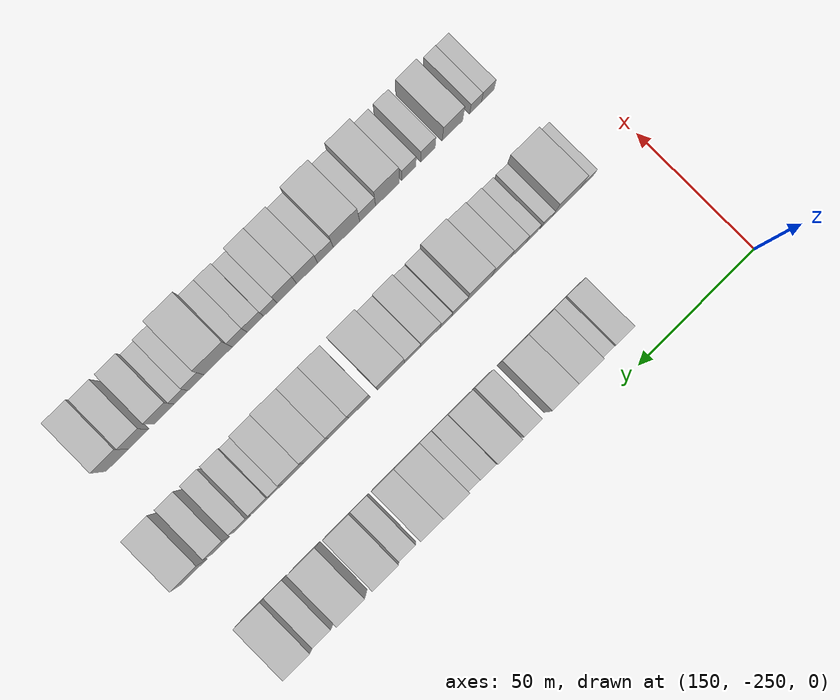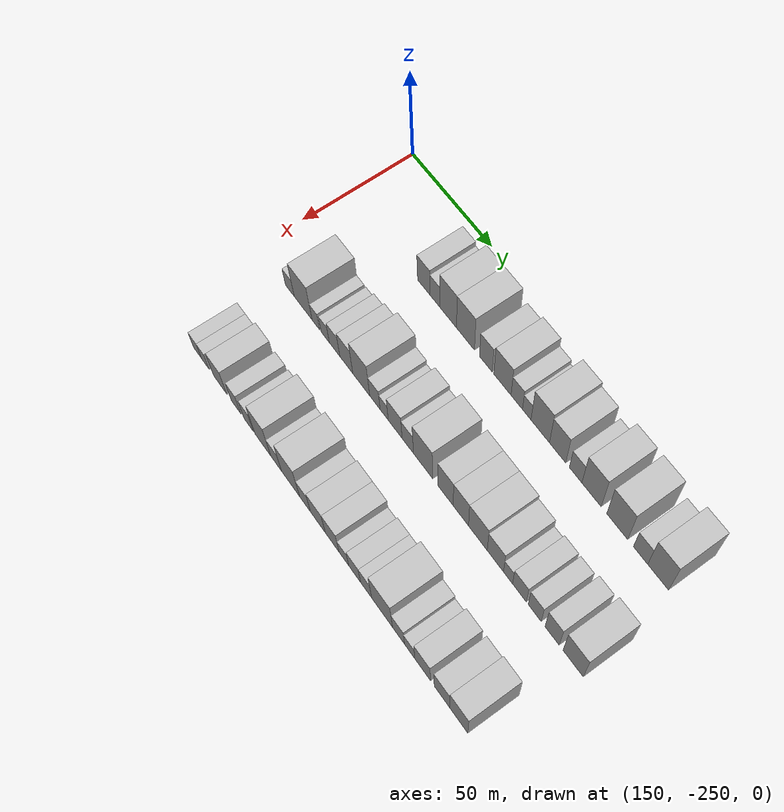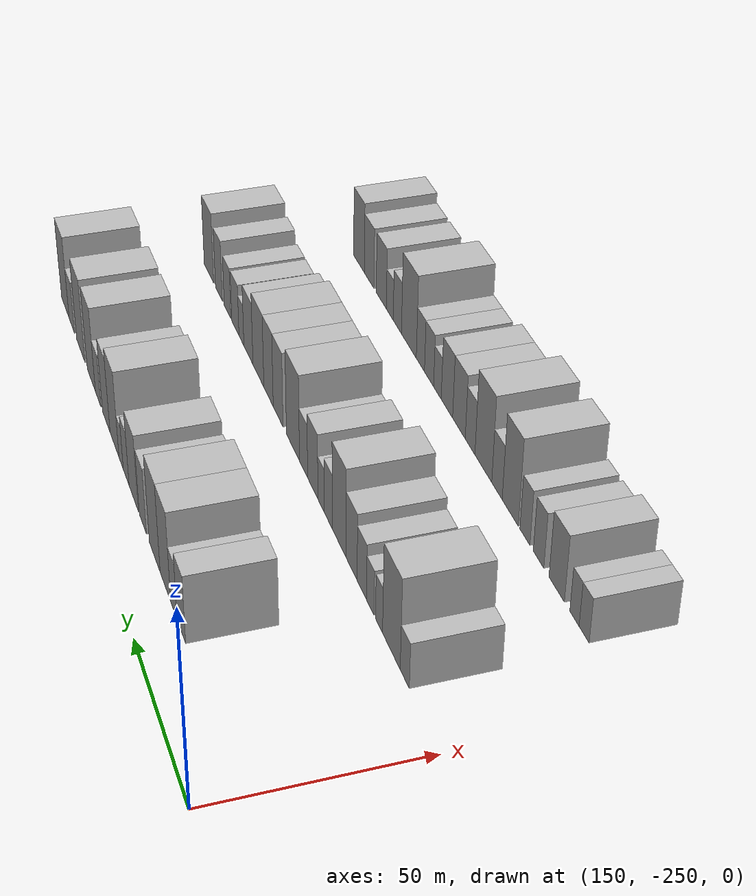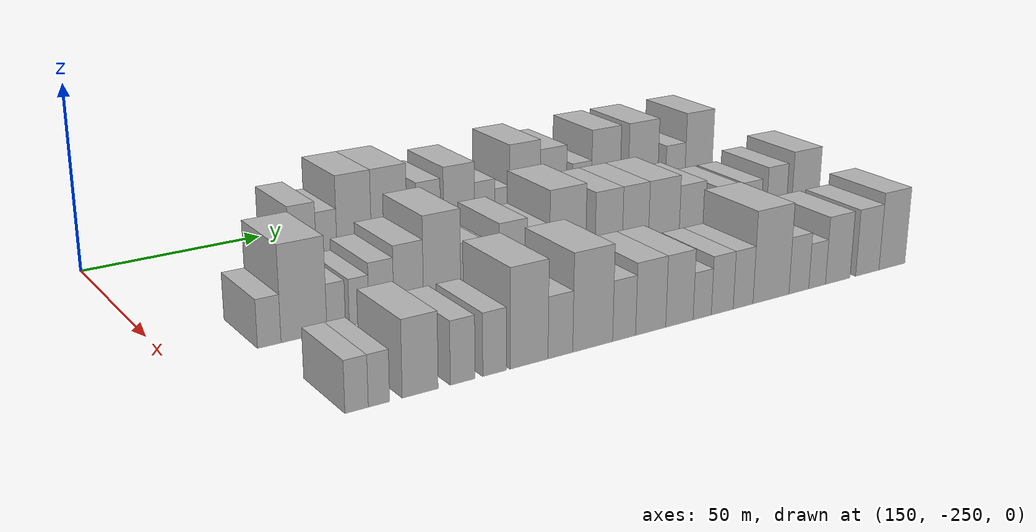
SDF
<sdf version="1.6">
 <world name="default">
  <model name="building_459">
   <static>1</static>
   <pose>170.0000 -200.6749 0 0.000000 0.000000 0.000000</pose>
   <link name="link">
    <pose>0 0 9.00 0 0 0</pose>
    <collision name="collision"><geometry><box><size>20.0000 7.7728 18.0000</size></box></geometry></collision>
    <visual name="visual">
     <cast_shadows>0</cast_shadows>
     <geometry><box><size>20.0000 7.7728 18.0000</size></box></geometry>
     <material>
      <script>
       <uri>model://HANNAS_wall/materials/scripts</uri>
       <uri>model://HANNAS_wall/materials/textures</uri>
       <name>vrc/HANNAS_wall</name>
      </script>
     </material>
    </visual>
   </link>
  </model>
  <model name="building_460">
   <static>1</static>
   <pose>170.0000 -193.7880 0 0.000000 0.000000 0.000000</pose>
   <link name="link">
    <pose>0 0 7.50 0 0 0</pose>
    <collision name="collision"><geometry><box><size>20.0000 6.0010 15.0000</size></box></geometry></collision>
    <visual name="visual">
     <cast_shadows>0</cast_shadows>
     <geometry><box><size>20.0000 6.0010 15.0000</size></box></geometry>
     <material>
      <script>
       <uri>model://HANNAS_wall/materials/scripts</uri>
       <uri>model://HANNAS_wall/materials/textures</uri>
       <name>vrc/HANNAS_wall</name>
      </script>
     </material>
    </visual>
   </link>
  </model>
  <model name="building_461">
   <static>1</static>
   <pose>170.0000 -185.6848 0 0.000000 0.000000 0.000000</pose>
   <link name="link">
    <pose>0 0 12.00 0 0 0</pose>
    <collision name="collision"><geometry><box><size>20.0000 10.2054 24.0000</size></box></geometry></collision>
    <visual name="visual">
     <cast_shadows>0</cast_shadows>
     <geometry><box><size>20.0000 10.2054 24.0000</size></box></geometry>
     <material>
      <script>
       <uri>model://HANNAS_wall/materials/scripts</uri>
       <uri>model://HANNAS_wall/materials/textures</uri>
       <name>vrc/HANNAS_wall</name>
      </script>
     </material>
    </visual>
   </link>
  </model>
  <model name="building_462">
   <static>1</static>
   <pose>170.0000 -175.1895 0 0.000000 0.000000 0.000000</pose>
   <link name="link">
    <pose>0 0 12.00 0 0 0</pose>
    <collision name="collision"><geometry><box><size>20.0000 10.7854 24.0000</size></box></geometry></collision>
    <visual name="visual">
     <cast_shadows>0</cast_shadows>
     <geometry><box><size>20.0000 10.7854 24.0000</size></box></geometry>
     <material>
      <script>
       <uri>model://HANNAS_wall/materials/scripts</uri>
       <uri>model://HANNAS_wall/materials/textures</uri>
       <name>vrc/HANNAS_wall</name>
      </script>
     </material>
    </visual>
   </link>
  </model>
  <model name="building_463">
   <static>1</static>
   <pose>170.0000 -163.0595 0 0.000000 0.000000 0.000000</pose>
   <link name="link">
    <pose>0 0 9.00 0 0 0</pose>
    <collision name="collision"><geometry><box><size>20.0000 7.4746 18.0000</size></box></geometry></collision>
    <visual name="visual">
     <cast_shadows>0</cast_shadows>
     <geometry><box><size>20.0000 7.4746 18.0000</size></box></geometry>
     <material>
      <script>
       <uri>model://HANNAS_wall/materials/scripts</uri>
       <uri>model://HANNAS_wall/materials/textures</uri>
       <name>vrc/HANNAS_wall</name>
      </script>
     </material>
    </visual>
   </link>
  </model>
  <model name="building_464">
   <static>1</static>
   <pose>170.0000 -153.3222 0 0.000000 0.000000 0.000000</pose>
   <link name="link">
    <pose>0 0 10.50 0 0 0</pose>
    <collision name="collision"><geometry><box><size>20.0000 10.0000 21.0000</size></box></geometry></collision>
    <visual name="visual">
     <cast_shadows>0</cast_shadows>
     <geometry><box><size>20.0000 10.0000 21.0000</size></box></geometry>
     <material>
      <script>
       <uri>model://HANNAS_wall/materials/scripts</uri>
       <uri>model://HANNAS_wall/materials/textures</uri>
       <name>vrc/HANNAS_wall</name>
      </script>
     </material>
    </visual>
   </link>
  </model>
  <model name="building_465">
   <static>1</static>
   <pose>170.0000 -145.0394 0 0.000000 0.000000 0.000000</pose>
   <link name="link">
    <pose>0 0 7.50 0 0 0</pose>
    <collision name="collision"><geometry><box><size>20.0000 6.5656 15.0000</size></box></geometry></collision>
    <visual name="visual">
     <cast_shadows>0</cast_shadows>
     <geometry><box><size>20.0000 6.5656 15.0000</size></box></geometry>
     <material>
      <script>
       <uri>model://HANNAS_wall/materials/scripts</uri>
       <uri>model://HANNAS_wall/materials/textures</uri>
       <name>vrc/HANNAS_wall</name>
      </script>
     </material>
    </visual>
   </link>
  </model>
  <model name="building_466">
   <static>1</static>
   <pose>170.0000 -139.3261 0 0.000000 0.000000 0.000000</pose>
   <link name="link">
    <pose>0 0 6.00 0 0 0</pose>
    <collision name="collision"><geometry><box><size>20.0000 4.8610 12.0000</size></box></geometry></collision>
    <visual name="visual">
     <cast_shadows>0</cast_shadows>
     <geometry><box><size>20.0000 4.8610 12.0000</size></box></geometry>
     <material>
      <script>
       <uri>model://HANNAS_wall/materials/scripts</uri>
       <uri>model://HANNAS_wall/materials/textures</uri>
       <name>vrc/HANNAS_wall</name>
      </script>
     </material>
    </visual>
   </link>
  </model>
  <model name="building_467">
   <static>1</static>
   <pose>170.0000 -131.6792 0 0.000000 0.000000 0.000000</pose>
   <link name="link">
    <pose>0 0 12.00 0 0 0</pose>
    <collision name="collision"><geometry><box><size>20.0000 10.4327 24.0000</size></box></geometry></collision>
    <visual name="visual">
     <cast_shadows>0</cast_shadows>
     <geometry><box><size>20.0000 10.4327 24.0000</size></box></geometry>
     <material>
      <script>
       <uri>model://HANNAS_wall/materials/scripts</uri>
       <uri>model://HANNAS_wall/materials/textures</uri>
       <name>vrc/HANNAS_wall</name>
      </script>
     </material>
    </visual>
   </link>
  </model>
  <model name="building_468">
   <static>1</static>
   <pose>170.0000 -121.9236 0 0.000000 0.000000 0.000000</pose>
   <link name="link">
    <pose>0 0 10.50 0 0 0</pose>
    <collision name="collision"><geometry><box><size>20.0000 9.0785 21.0000</size></box></geometry></collision>
    <visual name="visual">
     <cast_shadows>0</cast_shadows>
     <geometry><box><size>20.0000 9.0785 21.0000</size></box></geometry>
     <material>
      <script>
       <uri>model://HANNAS_wall/materials/scripts</uri>
       <uri>model://HANNAS_wall/materials/textures</uri>
       <name>vrc/HANNAS_wall</name>
      </script>
     </material>
    </visual>
   </link>
  </model>
  <model name="building_469">
   <static>1</static>
   <pose>170.0000 -111.9603 0 0.000000 0.000000 0.000000</pose>
   <link name="link">
    <pose>0 0 7.50 0 0 0</pose>
    <collision name="collision"><geometry><box><size>20.0000 6.8480 15.0000</size></box></geometry></collision>
    <visual name="visual">
     <cast_shadows>0</cast_shadows>
     <geometry><box><size>20.0000 6.8480 15.0000</size></box></geometry>
     <material>
      <script>
       <uri>model://HANNAS_wall/materials/scripts</uri>
       <uri>model://HANNAS_wall/materials/textures</uri>
       <name>vrc/HANNAS_wall</name>
      </script>
     </material>
    </visual>
   </link>
  </model>
  <model name="building_470">
   <static>1</static>
   <pose>170.0000 -103.3231 0 0.000000 0.000000 0.000000</pose>
   <link name="link">
    <pose>0 0 12.00 0 0 0</pose>
    <collision name="collision"><geometry><box><size>20.0000 10.4263 24.0000</size></box></geometry></collision>
    <visual name="visual">
     <cast_shadows>0</cast_shadows>
     <geometry><box><size>20.0000 10.4263 24.0000</size></box></geometry>
     <material>
      <script>
       <uri>model://HANNAS_wall/materials/scripts</uri>
       <uri>model://HANNAS_wall/materials/textures</uri>
       <name>vrc/HANNAS_wall</name>
      </script>
     </material>
    </visual>
   </link>
  </model>
  <model name="building_471">
   <static>1</static>
   <pose>170.0000 -89.5599 0 0.000000 0.000000 0.000000</pose>
   <link name="link">
    <pose>0 0 12.00 0 0 0</pose>
    <collision name="collision"><geometry><box><size>20.0000 11.1001 24.0000</size></box></geometry></collision>
    <visual name="visual">
     <cast_shadows>0</cast_shadows>
     <geometry><box><size>20.0000 11.1001 24.0000</size></box></geometry>
     <material>
      <script>
       <uri>model://HANNAS_wall/materials/scripts</uri>
       <uri>model://HANNAS_wall/materials/textures</uri>
       <name>vrc/HANNAS_wall</name>
      </script>
     </material>
    </visual>
   </link>
  </model>
  <model name="building_472">
   <static>1</static>
   <pose>170.0000 -77.2872 0 0.000000 0.000000 0.000000</pose>
   <link name="link">
    <pose>0 0 7.50 0 0 0</pose>
    <collision name="collision"><geometry><box><size>20.0000 7.4454 15.0000</size></box></geometry></collision>
    <visual name="visual">
     <cast_shadows>0</cast_shadows>
     <geometry><box><size>20.0000 7.4454 15.0000</size></box></geometry>
     <material>
      <script>
       <uri>model://HANNAS_wall/materials/scripts</uri>
       <uri>model://HANNAS_wall/materials/textures</uri>
       <name>vrc/HANNAS_wall</name>
      </script>
     </material>
    </visual>
   </link>
  </model>
  <model name="building_473">
   <static>1</static>
   <pose>170.0000 -68.2282 0 0.000000 0.000000 0.000000</pose>
   <link name="link">
    <pose>0 0 12.00 0 0 0</pose>
    <collision name="collision"><geometry><box><size>20.0000 10.6726 24.0000</size></box></geometry></collision>
    <visual name="visual">
     <cast_shadows>0</cast_shadows>
     <geometry><box><size>20.0000 10.6726 24.0000</size></box></geometry>
     <material>
      <script>
       <uri>model://HANNAS_wall/materials/scripts</uri>
       <uri>model://HANNAS_wall/materials/textures</uri>
       <name>vrc/HANNAS_wall</name>
      </script>
     </material>
    </visual>
   </link>
  </model>
  <model name="building_586">
   <static>1</static>
   <pose>210.0000 -227.8085 0 0.000000 0.000000 0.000000</pose>
   <link name="link">
    <pose>0 0 6.00 0 0 0</pose>
    <collision name="collision"><geometry><box><size>20.0000 5.8399 12.0000</size></box></geometry></collision>
    <visual name="visual">
     <cast_shadows>0</cast_shadows>
     <geometry><box><size>20.0000 5.8399 12.0000</size></box></geometry>
     <material>
      <script>
       <uri>model://HANNAS_wall/materials/scripts</uri>
       <uri>model://HANNAS_wall/materials/textures</uri>
       <name>vrc/HANNAS_wall</name>
      </script>
     </material>
    </visual>
   </link>
  </model>
  <model name="building_587">
   <static>1</static>
   <pose>210.0000 -219.0505 0 0.000000 0.000000 0.000000</pose>
   <link name="link">
    <pose>0 0 12.00 0 0 0</pose>
    <collision name="collision"><geometry><box><size>20.0000 11.6761 24.0000</size></box></geometry></collision>
    <visual name="visual">
     <cast_shadows>0</cast_shadows>
     <geometry><box><size>20.0000 11.6761 24.0000</size></box></geometry>
     <material>
      <script>
       <uri>model://HANNAS_wall/materials/scripts</uri>
       <uri>model://HANNAS_wall/materials/textures</uri>
       <name>vrc/HANNAS_wall</name>
      </script>
     </material>
    </visual>
   </link>
  </model>
  <model name="building_588">
   <static>1</static>
   <pose>210.0000 -210.7938 0 0.000000 0.000000 0.000000</pose>
   <link name="link">
    <pose>0 0 6.00 0 0 0</pose>
    <collision name="collision"><geometry><box><size>20.0000 4.8373 12.0000</size></box></geometry></collision>
    <visual name="visual">
     <cast_shadows>0</cast_shadows>
     <geometry><box><size>20.0000 4.8373 12.0000</size></box></geometry>
     <material>
      <script>
       <uri>model://HANNAS_wall/materials/scripts</uri>
       <uri>model://HANNAS_wall/materials/textures</uri>
       <name>vrc/HANNAS_wall</name>
      </script>
     </material>
    </visual>
   </link>
  </model>
  <model name="building_589">
   <static>1</static>
   <pose>210.0000 -204.7537 0 0.000000 0.000000 0.000000</pose>
   <link name="link">
    <pose>0 0 6.00 0 0 0</pose>
    <collision name="collision"><geometry><box><size>20.0000 5.2429 12.0000</size></box></geometry></collision>
    <visual name="visual">
     <cast_shadows>0</cast_shadows>
     <geometry><box><size>20.0000 5.2429 12.0000</size></box></geometry>
     <material>
      <script>
       <uri>model://HANNAS_wall/materials/scripts</uri>
       <uri>model://HANNAS_wall/materials/textures</uri>
       <name>vrc/HANNAS_wall</name>
      </script>
     </material>
    </visual>
   </link>
  </model>
  <model name="building_590">
   <static>1</static>
   <pose>210.0000 -198.7885 0 0.000000 0.000000 0.000000</pose>
   <link name="link">
    <pose>0 0 7.50 0 0 0</pose>
    <collision name="collision"><geometry><box><size>20.0000 6.6876 15.0000</size></box></geometry></collision>
    <visual name="visual">
     <cast_shadows>0</cast_shadows>
     <geometry><box><size>20.0000 6.6876 15.0000</size></box></geometry>
     <material>
      <script>
       <uri>model://HANNAS_wall/materials/scripts</uri>
       <uri>model://HANNAS_wall/materials/textures</uri>
       <name>vrc/HANNAS_wall</name>
      </script>
     </material>
    </visual>
   </link>
  </model>
  <model name="building_591">
   <static>1</static>
   <pose>210.0000 -191.3657 0 0.000000 0.000000 0.000000</pose>
   <link name="link">
    <pose>0 0 9.00 0 0 0</pose>
    <collision name="collision"><geometry><box><size>20.0000 8.1581 18.0000</size></box></geometry></collision>
    <visual name="visual">
     <cast_shadows>0</cast_shadows>
     <geometry><box><size>20.0000 8.1581 18.0000</size></box></geometry>
     <material>
      <script>
       <uri>model://HANNAS_wall/materials/scripts</uri>
       <uri>model://HANNAS_wall/materials/textures</uri>
       <name>vrc/HANNAS_wall</name>
      </script>
     </material>
    </visual>
   </link>
  </model>
  <model name="building_592">
   <static>1</static>
   <pose>210.0000 -182.0295 0 0.000000 0.000000 0.000000</pose>
   <link name="link">
    <pose>0 0 12.00 0 0 0</pose>
    <collision name="collision"><geometry><box><size>20.0000 10.5143 24.0000</size></box></geometry></collision>
    <visual name="visual">
     <cast_shadows>0</cast_shadows>
     <geometry><box><size>20.0000 10.5143 24.0000</size></box></geometry>
     <material>
      <script>
       <uri>model://HANNAS_wall/materials/scripts</uri>
       <uri>model://HANNAS_wall/materials/textures</uri>
       <name>vrc/HANNAS_wall</name>
      </script>
     </material>
    </visual>
   </link>
  </model>
  <model name="building_593">
   <static>1</static>
   <pose>210.0000 -173.6153 0 0.000000 0.000000 0.000000</pose>
   <link name="link">
    <pose>0 0 7.50 0 0 0</pose>
    <collision name="collision"><geometry><box><size>20.0000 6.3141 15.0000</size></box></geometry></collision>
    <visual name="visual">
     <cast_shadows>0</cast_shadows>
     <geometry><box><size>20.0000 6.3141 15.0000</size></box></geometry>
     <material>
      <script>
       <uri>model://HANNAS_wall/materials/scripts</uri>
       <uri>model://HANNAS_wall/materials/textures</uri>
       <name>vrc/HANNAS_wall</name>
      </script>
     </material>
    </visual>
   </link>
  </model>
  <model name="building_594">
   <static>1</static>
   <pose>210.0000 -167.9950 0 0.000000 0.000000 0.000000</pose>
   <link name="link">
    <pose>0 0 6.00 0 0 0</pose>
    <collision name="collision"><geometry><box><size>20.0000 4.9264 12.0000</size></box></geometry></collision>
    <visual name="visual">
     <cast_shadows>0</cast_shadows>
     <geometry><box><size>20.0000 4.9264 12.0000</size></box></geometry>
     <material>
      <script>
       <uri>model://HANNAS_wall/materials/scripts</uri>
       <uri>model://HANNAS_wall/materials/textures</uri>
       <name>vrc/HANNAS_wall</name>
      </script>
     </material>
    </visual>
   </link>
  </model>
  <model name="building_595">
   <static>1</static>
   <pose>210.0000 -161.3542 0 0.000000 0.000000 0.000000</pose>
   <link name="link">
    <pose>0 0 9.00 0 0 0</pose>
    <collision name="collision"><geometry><box><size>20.0000 8.3553 18.0000</size></box></geometry></collision>
    <visual name="visual">
     <cast_shadows>0</cast_shadows>
     <geometry><box><size>20.0000 8.3553 18.0000</size></box></geometry>
     <material>
      <script>
       <uri>model://HANNAS_wall/materials/scripts</uri>
       <uri>model://HANNAS_wall/materials/textures</uri>
       <name>vrc/HANNAS_wall</name>
      </script>
     </material>
    </visual>
   </link>
  </model>
  <model name="building_596">
   <static>1</static>
   <pose>210.0000 -153.7788 0 0.000000 0.000000 0.000000</pose>
   <link name="link">
    <pose>0 0 7.50 0 0 0</pose>
    <collision name="collision"><geometry><box><size>20.0000 6.7953 15.0000</size></box></geometry></collision>
    <visual name="visual">
     <cast_shadows>0</cast_shadows>
     <geometry><box><size>20.0000 6.7953 15.0000</size></box></geometry>
     <material>
      <script>
       <uri>model://HANNAS_wall/materials/scripts</uri>
       <uri>model://HANNAS_wall/materials/textures</uri>
       <name>vrc/HANNAS_wall</name>
      </script>
     </material>
    </visual>
   </link>
  </model>
  <model name="building_597">
   <static>1</static>
   <pose>210.0000 -144.7455 0 0.000000 0.000000 0.000000</pose>
   <link name="link">
    <pose>0 0 12.00 0 0 0</pose>
    <collision name="collision"><geometry><box><size>20.0000 11.2714 24.0000</size></box></geometry></collision>
    <visual name="visual">
     <cast_shadows>0</cast_shadows>
     <geometry><box><size>20.0000 11.2714 24.0000</size></box></geometry>
     <material>
      <script>
       <uri>model://HANNAS_wall/materials/scripts</uri>
       <uri>model://HANNAS_wall/materials/textures</uri>
       <name>vrc/HANNAS_wall</name>
      </script>
     </material>
    </visual>
   </link>
  </model>
  <model name="building_598">
   <static>1</static>
   <pose>210.0000 -131.6985 0 0.000000 0.000000 0.000000</pose>
   <link name="link">
    <pose>0 0 10.50 0 0 0</pose>
    <collision name="collision"><geometry><box><size>20.0000 8.8224 21.0000</size></box></geometry></collision>
    <visual name="visual">
     <cast_shadows>0</cast_shadows>
     <geometry><box><size>20.0000 8.8224 21.0000</size></box></geometry>
     <material>
      <script>
       <uri>model://HANNAS_wall/materials/scripts</uri>
       <uri>model://HANNAS_wall/materials/textures</uri>
       <name>vrc/HANNAS_wall</name>
      </script>
     </material>
    </visual>
   </link>
  </model>
  <model name="building_599">
   <static>1</static>
   <pose>210.0000 -122.9503 0 0.000000 0.000000 0.000000</pose>
   <link name="link">
    <pose>0 0 10.50 0 0 0</pose>
    <collision name="collision"><geometry><box><size>20.0000 8.6740 21.0000</size></box></geometry></collision>
    <visual name="visual">
     <cast_shadows>0</cast_shadows>
     <geometry><box><size>20.0000 8.6740 21.0000</size></box></geometry>
     <material>
      <script>
       <uri>model://HANNAS_wall/materials/scripts</uri>
       <uri>model://HANNAS_wall/materials/textures</uri>
       <name>vrc/HANNAS_wall</name>
      </script>
     </material>
    </visual>
   </link>
  </model>
  <model name="building_600">
   <static>1</static>
   <pose>210.0000 -113.3906 0 0.000000 0.000000 0.000000</pose>
   <link name="link">
    <pose>0 0 10.50 0 0 0</pose>
    <collision name="collision"><geometry><box><size>20.0000 10.4454 21.0000</size></box></geometry></collision>
    <visual name="visual">
     <cast_shadows>0</cast_shadows>
     <geometry><box><size>20.0000 10.4454 21.0000</size></box></geometry>
     <material>
      <script>
       <uri>model://HANNAS_wall/materials/scripts</uri>
       <uri>model://HANNAS_wall/materials/textures</uri>
       <name>vrc/HANNAS_wall</name>
      </script>
     </material>
    </visual>
   </link>
  </model>
  <model name="building_601">
   <static>1</static>
   <pose>210.0000 -103.6855 0 0.000000 0.000000 0.000000</pose>
   <link name="link">
    <pose>0 0 9.00 0 0 0</pose>
    <collision name="collision"><geometry><box><size>20.0000 8.9649 18.0000</size></box></geometry></collision>
    <visual name="visual">
     <cast_shadows>0</cast_shadows>
     <geometry><box><size>20.0000 8.9649 18.0000</size></box></geometry>
     <material>
      <script>
       <uri>model://HANNAS_wall/materials/scripts</uri>
       <uri>model://HANNAS_wall/materials/textures</uri>
       <name>vrc/HANNAS_wall</name>
      </script>
     </material>
    </visual>
   </link>
  </model>
  <model name="building_602">
   <static>1</static>
   <pose>210.0000 -96.7235 0 0.000000 0.000000 0.000000</pose>
   <link name="link">
    <pose>0 0 6.00 0 0 0</pose>
    <collision name="collision"><geometry><box><size>20.0000 4.9590 12.0000</size></box></geometry></collision>
    <visual name="visual">
     <cast_shadows>0</cast_shadows>
     <geometry><box><size>20.0000 4.9590 12.0000</size></box></geometry>
     <material>
      <script>
       <uri>model://HANNAS_wall/materials/scripts</uri>
       <uri>model://HANNAS_wall/materials/textures</uri>
       <name>vrc/HANNAS_wall</name>
      </script>
     </material>
    </visual>
   </link>
  </model>
  <model name="building_603">
   <static>1</static>
   <pose>210.0000 -90.5403 0 0.000000 0.000000 0.000000</pose>
   <link name="link">
    <pose>0 0 7.50 0 0 0</pose>
    <collision name="collision"><geometry><box><size>20.0000 7.4075 15.0000</size></box></geometry></collision>
    <visual name="visual">
     <cast_shadows>0</cast_shadows>
     <geometry><box><size>20.0000 7.4075 15.0000</size></box></geometry>
     <material>
      <script>
       <uri>model://HANNAS_wall/materials/scripts</uri>
       <uri>model://HANNAS_wall/materials/textures</uri>
       <name>vrc/HANNAS_wall</name>
      </script>
     </material>
    </visual>
   </link>
  </model>
  <model name="building_604">
   <static>1</static>
   <pose>210.0000 -82.3631 0 0.000000 0.000000 0.000000</pose>
   <link name="link">
    <pose>0 0 7.50 0 0 0</pose>
    <collision name="collision"><geometry><box><size>20.0000 6.9468 15.0000</size></box></geometry></collision>
    <visual name="visual">
     <cast_shadows>0</cast_shadows>
     <geometry><box><size>20.0000 6.9468 15.0000</size></box></geometry>
     <material>
      <script>
       <uri>model://HANNAS_wall/materials/scripts</uri>
       <uri>model://HANNAS_wall/materials/textures</uri>
       <name>vrc/HANNAS_wall</name>
      </script>
     </material>
    </visual>
   </link>
  </model>
  <model name="building_605">
   <static>1</static>
   <pose>210.0000 -73.1635 0 0.000000 0.000000 0.000000</pose>
   <link name="link">
    <pose>0 0 9.00 0 0 0</pose>
    <collision name="collision"><geometry><box><size>20.0000 7.4525 18.0000</size></box></geometry></collision>
    <visual name="visual">
     <cast_shadows>0</cast_shadows>
     <geometry><box><size>20.0000 7.4525 18.0000</size></box></geometry>
     <material>
      <script>
       <uri>model://HANNAS_wall/materials/scripts</uri>
       <uri>model://HANNAS_wall/materials/textures</uri>
       <name>vrc/HANNAS_wall</name>
      </script>
     </material>
    </visual>
   </link>
  </model>
  <model name="building_606">
   <static>1</static>
   <pose>210.0000 -62.2141 0 0.000000 0.000000 0.000000</pose>
   <link name="link">
    <pose>0 0 10.50 0 0 0</pose>
    <collision name="collision"><geometry><box><size>20.0000 10.4463 21.0000</size></box></geometry></collision>
    <visual name="visual">
     <cast_shadows>0</cast_shadows>
     <geometry><box><size>20.0000 10.4463 21.0000</size></box></geometry>
     <material>
      <script>
       <uri>model://HANNAS_wall/materials/scripts</uri>
       <uri>model://HANNAS_wall/materials/textures</uri>
       <name>vrc/HANNAS_wall</name>
      </script>
     </material>
    </visual>
   </link>
  </model>
  <model name="building_726">
   <static>1</static>
   <pose>250.0000 -225.8041 0 0.000000 0.000000 0.000000</pose>
   <link name="link">
    <pose>0 0 6.00 0 0 0</pose>
    <collision name="collision"><geometry><box><size>20.0000 5.4241 12.0000</size></box></geometry></collision>
    <visual name="visual">
     <cast_shadows>0</cast_shadows>
     <geometry><box><size>20.0000 5.4241 12.0000</size></box></geometry>
     <material>
      <script>
       <uri>model://HANNAS_wall/materials/scripts</uri>
       <uri>model://HANNAS_wall/materials/textures</uri>
       <name>vrc/HANNAS_wall</name>
      </script>
     </material>
    </visual>
   </link>
  </model>
  <model name="building_727">
   <static>1</static>
   <pose>250.0000 -220.5698 0 0.000000 0.000000 0.000000</pose>
   <link name="link">
    <pose>0 0 6.00 0 0 0</pose>
    <collision name="collision"><geometry><box><size>20.0000 5.0446 12.0000</size></box></geometry></collision>
    <visual name="visual">
     <cast_shadows>0</cast_shadows>
     <geometry><box><size>20.0000 5.0446 12.0000</size></box></geometry>
     <material>
      <script>
       <uri>model://HANNAS_wall/materials/scripts</uri>
       <uri>model://HANNAS_wall/materials/textures</uri>
       <name>vrc/HANNAS_wall</name>
      </script>
     </material>
    </visual>
   </link>
  </model>
  <model name="building_728">
   <static>1</static>
   <pose>250.0000 -210.6636 0 0.000000 0.000000 0.000000</pose>
   <link name="link">
    <pose>0 0 9.00 0 0 0</pose>
    <collision name="collision"><geometry><box><size>20.0000 8.7678 18.0000</size></box></geometry></collision>
    <visual name="visual">
     <cast_shadows>0</cast_shadows>
     <geometry><box><size>20.0000 8.7678 18.0000</size></box></geometry>
     <material>
      <script>
       <uri>model://HANNAS_wall/materials/scripts</uri>
       <uri>model://HANNAS_wall/materials/textures</uri>
       <name>vrc/HANNAS_wall</name>
      </script>
     </material>
    </visual>
   </link>
  </model>
  <model name="building_729">
   <static>1</static>
   <pose>250.0000 -200.1696 0 0.000000 0.000000 0.000000</pose>
   <link name="link">
    <pose>0 0 7.50 0 0 0</pose>
    <collision name="collision"><geometry><box><size>20.0000 6.2201 15.0000</size></box></geometry></collision>
    <visual name="visual">
     <cast_shadows>0</cast_shadows>
     <geometry><box><size>20.0000 6.2201 15.0000</size></box></geometry>
     <material>
      <script>
       <uri>model://HANNAS_wall/materials/scripts</uri>
       <uri>model://HANNAS_wall/materials/textures</uri>
       <name>vrc/HANNAS_wall</name>
      </script>
     </material>
    </visual>
   </link>
  </model>
  <model name="building_730">
   <static>1</static>
   <pose>250.0000 -192.0175 0 0.000000 0.000000 0.000000</pose>
   <link name="link">
    <pose>0 0 7.50 0 0 0</pose>
    <collision name="collision"><geometry><box><size>20.0000 6.0841 15.0000</size></box></geometry></collision>
    <visual name="visual">
     <cast_shadows>0</cast_shadows>
     <geometry><box><size>20.0000 6.0841 15.0000</size></box></geometry>
     <material>
      <script>
       <uri>model://HANNAS_wall/materials/scripts</uri>
       <uri>model://HANNAS_wall/materials/textures</uri>
       <name>vrc/HANNAS_wall</name>
      </script>
     </material>
    </visual>
   </link>
  </model>
  <model name="building_731">
   <static>1</static>
   <pose>250.0000 -182.9197 0 0.000000 0.000000 0.000000</pose>
   <link name="link">
    <pose>0 0 12.00 0 0 0</pose>
    <collision name="collision"><geometry><box><size>20.0000 10.1115 24.0000</size></box></geometry></collision>
    <visual name="visual">
     <cast_shadows>0</cast_shadows>
     <geometry><box><size>20.0000 10.1115 24.0000</size></box></geometry>
     <material>
      <script>
       <uri>model://HANNAS_wall/materials/scripts</uri>
       <uri>model://HANNAS_wall/materials/textures</uri>
       <name>vrc/HANNAS_wall</name>
      </script>
     </material>
    </visual>
   </link>
  </model>
  <model name="building_732">
   <static>1</static>
   <pose>250.0000 -174.4849 0 0.000000 0.000000 0.000000</pose>
   <link name="link">
    <pose>0 0 7.50 0 0 0</pose>
    <collision name="collision"><geometry><box><size>20.0000 6.7580 15.0000</size></box></geometry></collision>
    <visual name="visual">
     <cast_shadows>0</cast_shadows>
     <geometry><box><size>20.0000 6.7580 15.0000</size></box></geometry>
     <material>
      <script>
       <uri>model://HANNAS_wall/materials/scripts</uri>
       <uri>model://HANNAS_wall/materials/textures</uri>
       <name>vrc/HANNAS_wall</name>
      </script>
     </material>
    </visual>
   </link>
  </model>
  <model name="building_733">
   <static>1</static>
   <pose>250.0000 -165.5013 0 0.000000 0.000000 0.000000</pose>
   <link name="link">
    <pose>0 0 12.00 0 0 0</pose>
    <collision name="collision"><geometry><box><size>20.0000 11.2093 24.0000</size></box></geometry></collision>
    <visual name="visual">
     <cast_shadows>0</cast_shadows>
     <geometry><box><size>20.0000 11.2093 24.0000</size></box></geometry>
     <material>
      <script>
       <uri>model://HANNAS_wall/materials/scripts</uri>
       <uri>model://HANNAS_wall/materials/textures</uri>
       <name>vrc/HANNAS_wall</name>
      </script>
     </material>
    </visual>
   </link>
  </model>
  <model name="building_734">
   <static>1</static>
   <pose>250.0000 -156.5807 0 0.000000 0.000000 0.000000</pose>
   <link name="link">
    <pose>0 0 7.50 0 0 0</pose>
    <collision name="collision"><geometry><box><size>20.0000 6.6319 15.0000</size></box></geometry></collision>
    <visual name="visual">
     <cast_shadows>0</cast_shadows>
     <geometry><box><size>20.0000 6.6319 15.0000</size></box></geometry>
     <material>
      <script>
       <uri>model://HANNAS_wall/materials/scripts</uri>
       <uri>model://HANNAS_wall/materials/textures</uri>
       <name>vrc/HANNAS_wall</name>
      </script>
     </material>
    </visual>
   </link>
  </model>
  <model name="building_735">
   <static>1</static>
   <pose>250.0000 -148.8086 0 0.000000 0.000000 0.000000</pose>
   <link name="link">
    <pose>0 0 9.00 0 0 0</pose>
    <collision name="collision"><geometry><box><size>20.0000 8.9122 18.0000</size></box></geometry></collision>
    <visual name="visual">
     <cast_shadows>0</cast_shadows>
     <geometry><box><size>20.0000 8.9122 18.0000</size></box></geometry>
     <material>
      <script>
       <uri>model://HANNAS_wall/materials/scripts</uri>
       <uri>model://HANNAS_wall/materials/textures</uri>
       <name>vrc/HANNAS_wall</name>
      </script>
     </material>
    </visual>
   </link>
  </model>
  <model name="building_736">
   <static>1</static>
   <pose>250.0000 -140.2031 0 0.000000 0.000000 0.000000</pose>
   <link name="link">
    <pose>0 0 9.00 0 0 0</pose>
    <collision name="collision"><geometry><box><size>20.0000 8.2988 18.0000</size></box></geometry></collision>
    <visual name="visual">
     <cast_shadows>0</cast_shadows>
     <geometry><box><size>20.0000 8.2988 18.0000</size></box></geometry>
     <material>
      <script>
       <uri>model://HANNAS_wall/materials/scripts</uri>
       <uri>model://HANNAS_wall/materials/textures</uri>
       <name>vrc/HANNAS_wall</name>
      </script>
     </material>
    </visual>
   </link>
  </model>
  <model name="building_737">
   <static>1</static>
   <pose>250.0000 -133.2348 0 0.000000 0.000000 0.000000</pose>
   <link name="link">
    <pose>0 0 6.00 0 0 0</pose>
    <collision name="collision"><geometry><box><size>20.0000 5.6377 12.0000</size></box></geometry></collision>
    <visual name="visual">
     <cast_shadows>0</cast_shadows>
     <geometry><box><size>20.0000 5.6377 12.0000</size></box></geometry>
     <material>
      <script>
       <uri>model://HANNAS_wall/materials/scripts</uri>
       <uri>model://HANNAS_wall/materials/textures</uri>
       <name>vrc/HANNAS_wall</name>
      </script>
     </material>
    </visual>
   </link>
  </model>
  <model name="building_738">
   <static>1</static>
   <pose>250.0000 -126.9623 0 0.000000 0.000000 0.000000</pose>
   <link name="link">
    <pose>0 0 7.50 0 0 0</pose>
    <collision name="collision"><geometry><box><size>20.0000 6.9073 15.0000</size></box></geometry></collision>
    <visual name="visual">
     <cast_shadows>0</cast_shadows>
     <geometry><box><size>20.0000 6.9073 15.0000</size></box></geometry>
     <material>
      <script>
       <uri>model://HANNAS_wall/materials/scripts</uri>
       <uri>model://HANNAS_wall/materials/textures</uri>
       <name>vrc/HANNAS_wall</name>
      </script>
     </material>
    </visual>
   </link>
  </model>
  <model name="building_739">
   <static>1</static>
   <pose>250.0000 -120.3437 0 0.000000 0.000000 0.000000</pose>
   <link name="link">
    <pose>0 0 7.50 0 0 0</pose>
    <collision name="collision"><geometry><box><size>20.0000 6.3300 15.0000</size></box></geometry></collision>
    <visual name="visual">
     <cast_shadows>0</cast_shadows>
     <geometry><box><size>20.0000 6.3300 15.0000</size></box></geometry>
     <material>
      <script>
       <uri>model://HANNAS_wall/materials/scripts</uri>
       <uri>model://HANNAS_wall/materials/textures</uri>
       <name>vrc/HANNAS_wall</name>
      </script>
     </material>
    </visual>
   </link>
  </model>
  <model name="building_740">
   <static>1</static>
   <pose>250.0000 -111.2496 0 0.000000 0.000000 0.000000</pose>
   <link name="link">
    <pose>0 0 12.00 0 0 0</pose>
    <collision name="collision"><geometry><box><size>20.0000 11.8581 24.0000</size></box></geometry></collision>
    <visual name="visual">
     <cast_shadows>0</cast_shadows>
     <geometry><box><size>20.0000 11.8581 24.0000</size></box></geometry>
     <material>
      <script>
       <uri>model://HANNAS_wall/materials/scripts</uri>
       <uri>model://HANNAS_wall/materials/textures</uri>
       <name>vrc/HANNAS_wall</name>
      </script>
     </material>
    </visual>
   </link>
  </model>
  <model name="building_741">
   <static>1</static>
   <pose>250.0000 -101.9656 0 0.000000 0.000000 0.000000</pose>
   <link name="link">
    <pose>0 0 7.50 0 0 0</pose>
    <collision name="collision"><geometry><box><size>20.0000 6.7100 15.0000</size></box></geometry></collision>
    <visual name="visual">
     <cast_shadows>0</cast_shadows>
     <geometry><box><size>20.0000 6.7100 15.0000</size></box></geometry>
     <material>
      <script>
       <uri>model://HANNAS_wall/materials/scripts</uri>
       <uri>model://HANNAS_wall/materials/textures</uri>
       <name>vrc/HANNAS_wall</name>
      </script>
     </material>
    </visual>
   </link>
  </model>
  <model name="building_742">
   <static>1</static>
   <pose>250.0000 -95.7255 0 0.000000 0.000000 0.000000</pose>
   <link name="link">
    <pose>0 0 6.00 0 0 0</pose>
    <collision name="collision"><geometry><box><size>20.0000 5.7701 12.0000</size></box></geometry></collision>
    <visual name="visual">
     <cast_shadows>0</cast_shadows>
     <geometry><box><size>20.0000 5.7701 12.0000</size></box></geometry>
     <material>
      <script>
       <uri>model://HANNAS_wall/materials/scripts</uri>
       <uri>model://HANNAS_wall/materials/textures</uri>
       <name>vrc/HANNAS_wall</name>
      </script>
     </material>
    </visual>
   </link>
  </model>
  <model name="building_743">
   <static>1</static>
   <pose>250.0000 -88.5403 0 0.000000 0.000000 0.000000</pose>
   <link name="link">
    <pose>0 0 9.00 0 0 0</pose>
    <collision name="collision"><geometry><box><size>20.0000 8.6003 18.0000</size></box></geometry></collision>
    <visual name="visual">
     <cast_shadows>0</cast_shadows>
     <geometry><box><size>20.0000 8.6003 18.0000</size></box></geometry>
     <material>
      <script>
       <uri>model://HANNAS_wall/materials/scripts</uri>
       <uri>model://HANNAS_wall/materials/textures</uri>
       <name>vrc/HANNAS_wall</name>
      </script>
     </material>
    </visual>
   </link>
  </model>
  <model name="building_744">
   <static>1</static>
   <pose>250.0000 -78.0308 0 0.000000 0.000000 0.000000</pose>
   <link name="link">
    <pose>0 0 9.00 0 0 0</pose>
    <collision name="collision"><geometry><box><size>20.0000 8.4187 18.0000</size></box></geometry></collision>
    <visual name="visual">
     <cast_shadows>0</cast_shadows>
     <geometry><box><size>20.0000 8.4187 18.0000</size></box></geometry>
     <material>
      <script>
       <uri>model://HANNAS_wall/materials/scripts</uri>
       <uri>model://HANNAS_wall/materials/textures</uri>
       <name>vrc/HANNAS_wall</name>
      </script>
     </material>
    </visual>
   </link>
  </model>
  <model name="building_745">
   <static>1</static>
   <pose>250.0000 -69.0367 0 0.000000 0.000000 0.000000</pose>
   <link name="link">
    <pose>0 0 10.50 0 0 0</pose>
    <collision name="collision"><geometry><box><size>20.0000 9.5696 21.0000</size></box></geometry></collision>
    <visual name="visual">
     <cast_shadows>0</cast_shadows>
     <geometry><box><size>20.0000 9.5696 21.0000</size></box></geometry>
     <material>
      <script>
       <uri>model://HANNAS_wall/materials/scripts</uri>
       <uri>model://HANNAS_wall/materials/textures</uri>
       <name>vrc/HANNAS_wall</name>
      </script>
     </material>
    </visual>
   </link>
  </model>
 </world>
</sdf>
